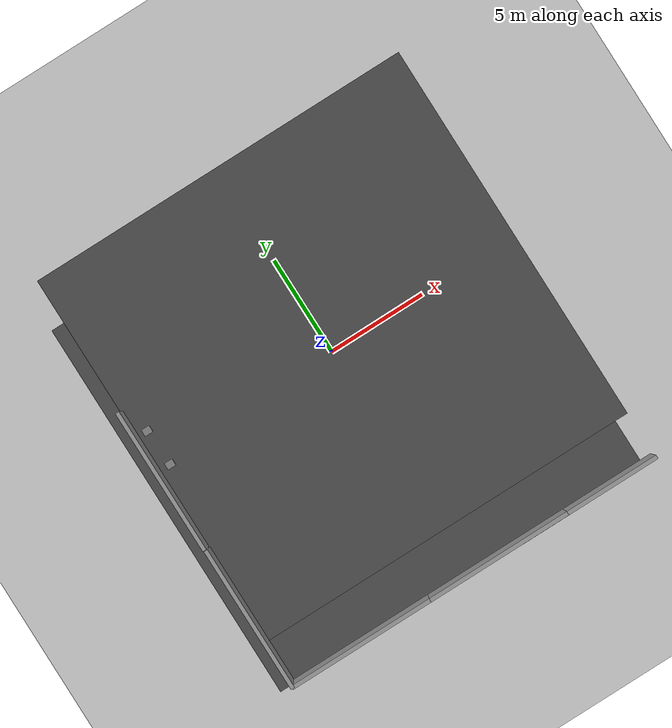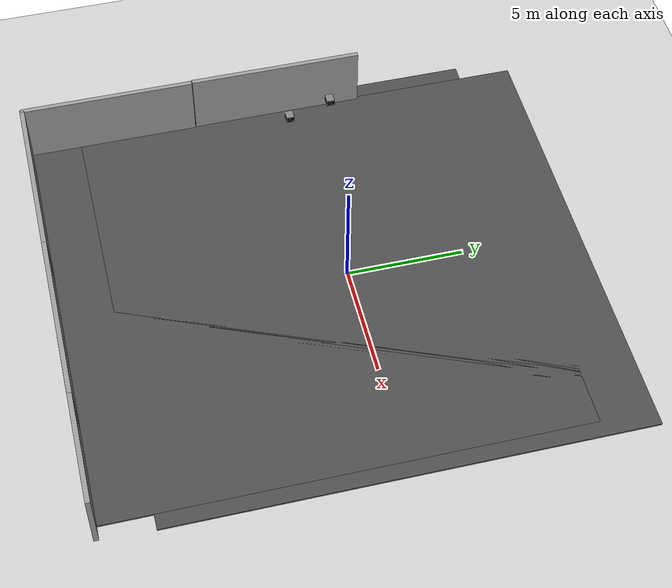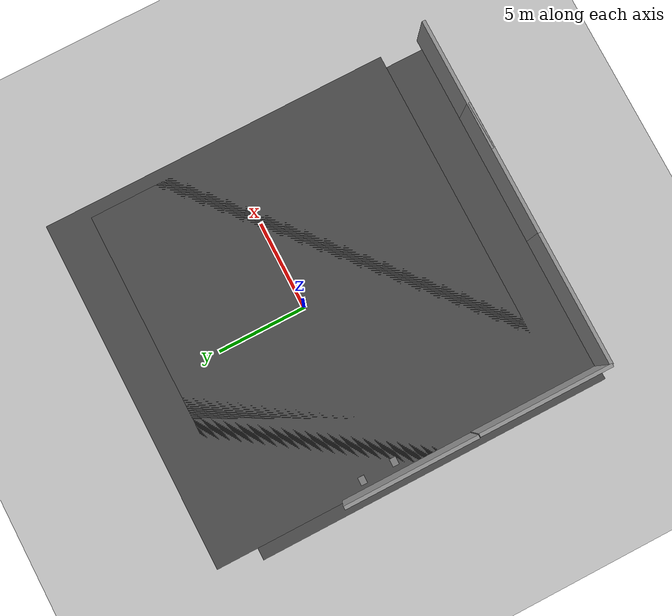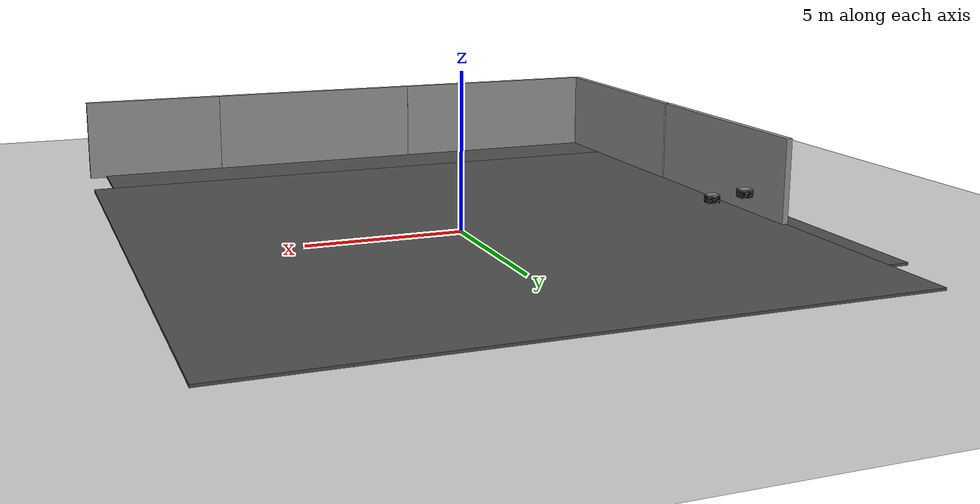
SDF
<sdf version="1.7">
 <world name="default">
  <model name="ground_plane">
   <static>1</static>
   <link name="link">
    <collision name="collision">
     <geometry><plane><normal>0 0 1</normal><size>100 100</size></plane></geometry>
     <surface>
      <contact><collide_bitmask>65535</collide_bitmask></contact>
      <friction><ode><mu>100</mu><mu2>50</mu2></ode></friction>
     </surface>
    </collision>
    <visual name="visual">
     <cast_shadows>0</cast_shadows>
     <geometry><plane><normal>0 0 1</normal><size>100 100</size></plane></geometry>
     <material>
      <script><uri>file://media/materials/scripts/gazebo.material</uri><name>Gazebo/Grey</name></script>
     </material>
    </visual>
   </link>
  </model>
  <model name="grey_wall">
   <static>1</static>
   <link name="link">
    <pose>0 0 1.4 0 -0 0</pose>
    <collision name="collision"><geometry><box><size>7.5 0.2 2.8</size></box></geometry></collision>
    <visual name="visual">
     <cast_shadows>0</cast_shadows>
     <geometry><box><size>7.5 0.2 2.8</size></box></geometry>
     <material>
      <script>
       <uri>model://grey_wall/materials/scripts</uri>
       <uri>model://grey_wall/materials/textures</uri>
       <name>vrc/grey_wall</name>
      </script>
     </material>
    </visual>
   </link>
   <pose>-9.84101 -0.869324 -0 0 0 -1.57</pose>
  </model>
  <model name="grey_wall_2">
   <static>1</static>
   <link name="link">
    <pose>0 0 1.4 0 -0 0</pose>
    <collision name="collision"><geometry><box><size>7.5 0.2 2.8</size></box></geometry></collision>
    <visual name="visual">
     <cast_shadows>0</cast_shadows>
     <geometry><box><size>7.5 0.2 2.8</size></box></geometry>
     <material>
      <script>
       <uri>model://grey_wall/materials/scripts</uri>
       <uri>model://grey_wall/materials/textures</uri>
       <name>vrc/grey_wall</name>
      </script>
     </material>
    </visual>
   </link>
   <pose>-9.80461 -8.40246 0 0 0 -1.57065</pose>
  </model>
  <model name="grey_wall_3">
   <static>1</static>
   <link name="link">
    <pose>0 0 1.4 0 -0 0</pose>
    <collision name="collision"><geometry><box><size>7.5 0.2 2.8</size></box></geometry></collision>
    <visual name="visual">
     <cast_shadows>0</cast_shadows>
     <geometry><box><size>7.5 0.2 2.8</size></box></geometry>
     <material>
      <script>
       <uri>model://grey_wall/materials/scripts</uri>
       <uri>model://grey_wall/materials/textures</uri>
       <name>vrc/grey_wall</name>
      </script>
     </material>
    </visual>
   </link>
   <pose>-6.05957 -12.102 0 0 -0 0</pose>
  </model>
  <model name="grey_wall_4">
   <static>1</static>
   <link name="link">
    <pose>0 0 1.4 0 -0 0</pose>
    <collision name="collision"><geometry><box><size>7.5 0.2 2.8</size></box></geometry></collision>
    <visual name="visual">
     <cast_shadows>0</cast_shadows>
     <geometry><box><size>7.5 0.2 2.8</size></box></geometry>
     <material>
      <script>
       <uri>model://grey_wall/materials/scripts</uri>
       <uri>model://grey_wall/materials/textures</uri>
       <name>vrc/grey_wall</name>
      </script>
     </material>
    </visual>
   </link>
   <pose>1.42477 -12.1053 0 0 -0 0</pose>
  </model>
  <model name="grey_wall_5">
   <static>1</static>
   <link name="link">
    <pose>0 0 1.4 0 -0 0</pose>
    <collision name="collision"><geometry><box><size>7.5 0.2 2.8</size></box></geometry></collision>
    <visual name="visual">
     <cast_shadows>0</cast_shadows>
     <geometry><box><size>7.5 0.2 2.8</size></box></geometry>
     <material>
      <script>
       <uri>model://grey_wall/materials/scripts</uri>
       <uri>model://grey_wall/materials/textures</uri>
       <name>vrc/grey_wall</name>
      </script>
     </material>
    </visual>
   </link>
   <pose>6.27902 -12.11 0 0 -0 0</pose>
  </model>
  <model name="file_box_1">
   <link name="link_0">
    <visual name="visual">
     <geometry><mesh><uri>model://file_box_1/meshes/meshes/body.dae</uri><scale>1 1 1</scale></mesh></geometry>
     <material>
      <script>
       <uri>model://file_box_1/materials/scripts</uri>
       <uri>model://file_box_1/materials/textures</uri>
       <name>file_box</name>
      </script>
     </material>
    </visual>
    <collision name="collision">
     <geometry><mesh><uri>model://file_box_1/meshes/meshes/body.dae</uri><scale>1 1 1</scale></mesh></geometry>
    </collision>
   </link>
   <link name="link_1">
    <visual name="visual">
     <geometry><mesh><uri>model://file_box_1/meshes/meshes/tag.dae</uri><scale>1 1 1</scale></mesh></geometry>
     <material>
      <lighting>1</lighting>
      <ambient>1 1 1 1</ambient>
      <diffuse>1 1 1 1</diffuse>
      <specular>0.01 0.01 0.01 1</specular>
      <emissive>0 0 0 1</emissive>
     </material>
    </visual>
    <collision name="collision">
     <geometry><mesh><uri>model://file_box_1/meshes/meshes/tag.dae</uri><scale>1 1 1</scale></mesh></geometry>
    </collision>
   </link>
   <static>1</static>
   <pose>-9.19193 -0.414016 0.08223 0 -0 0</pose>
  </model>
  <model name="file_box_1_clone">
   <link name="link_0">
    <visual name="visual">
     <geometry><mesh><uri>model://file_box_1/meshes/meshes/body.dae</uri><scale>1 1 1</scale></mesh></geometry>
     <material>
      <script>
       <uri>model://file_box_1/materials/scripts</uri>
       <uri>model://file_box_1/materials/textures</uri>
       <name>file_box</name>
      </script>
     </material>
    </visual>
    <collision name="collision">
     <geometry><mesh><uri>model://file_box_1/meshes/meshes/body.dae</uri><scale>1 1 1</scale></mesh></geometry>
    </collision>
   </link>
   <link name="link_1">
    <visual name="visual">
     <geometry><mesh><uri>model://file_box_1/meshes/meshes/tag.dae</uri><scale>1 1 1</scale></mesh></geometry>
     <material>
      <lighting>1</lighting>
      <ambient>1 1 1 1</ambient>
      <diffuse>1 1 1 1</diffuse>
      <specular>0.01 0.01 0.01 1</specular>
      <emissive>0 0 0 1</emissive>
     </material>
    </visual>
    <collision name="collision">
     <geometry><mesh><uri>model://file_box_1/meshes/meshes/tag.dae</uri><scale>1 1 1</scale></mesh></geometry>
    </collision>
   </link>
   <static>1</static>
   <pose>-9.22839 1.46506 0.67057 0 -0 0</pose>
  </model>
  <model name="asphalt_plane_clone">
   <static>1</static>
   <link name="link">
    <collision name="collision"><geometry><box><size>20 20 0.1</size></box></geometry></collision>
    <visual name="visual">
     <cast_shadows>0</cast_shadows>
     <geometry><box><size>20 20 0.1</size></box></geometry>
     <material>
      <script>
       <uri>model://asphalt_plane/materials/scripts</uri>
       <uri>model://asphalt_plane/materials/textures</uri>
       <name>vrc/asphalt</name>
      </script>
     </material>
    </visual>
   </link>
   <pose>0.122409 0.153163 0 0 -0 0</pose>
  </model>
  <model name="asphalt_plane_clone_clone">
   <static>1</static>
   <link name="link">
    <collision name="collision"><geometry><box><size>20 20 0.1</size></box></geometry></collision>
    <visual name="visual">
     <cast_shadows>0</cast_shadows>
     <geometry><box><size>20 20 0.1</size></box></geometry>
     <material>
      <script>
       <uri>model://asphalt_plane/materials/scripts</uri>
       <uri>model://asphalt_plane/materials/textures</uri>
       <name>vrc/asphalt</name>
      </script>
     </material>
    </visual>
   </link>
   <pose>-0.547108 -2.1725 0 0 -0 0</pose>
  </model>
 </world>
</sdf>
